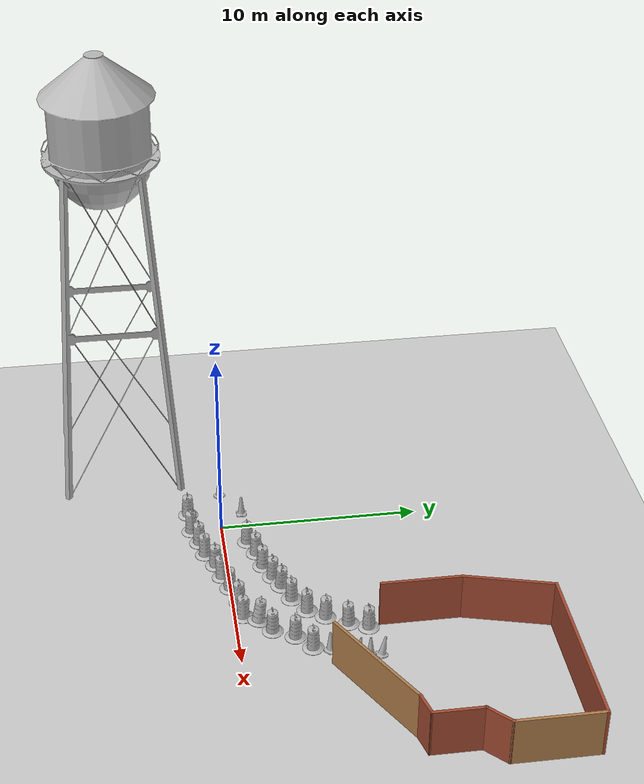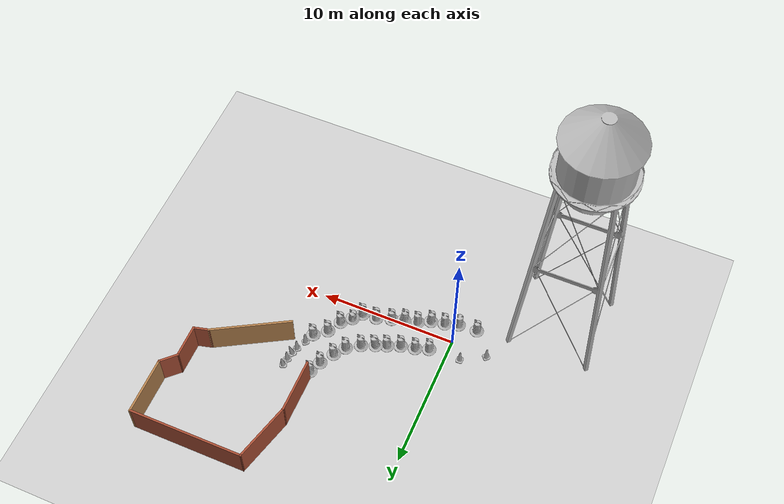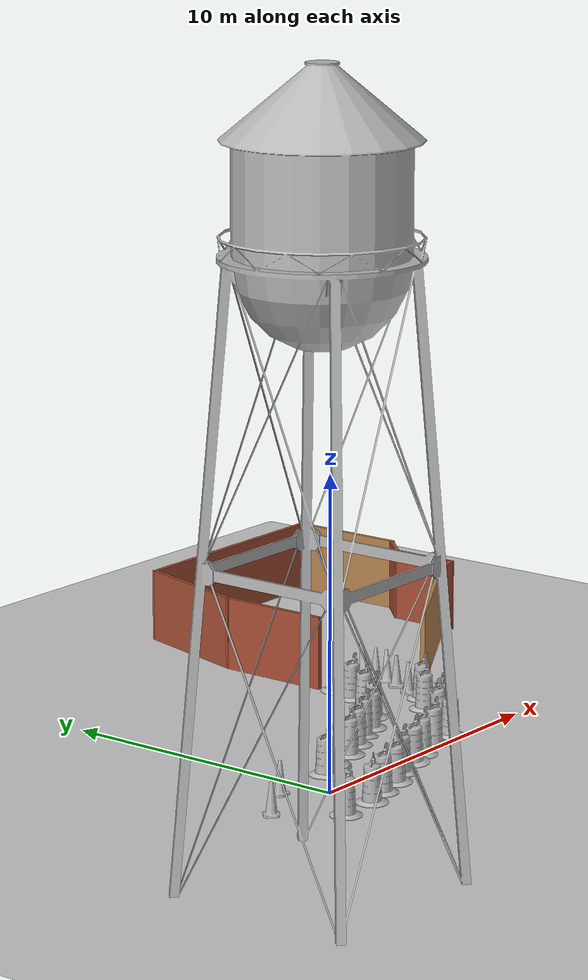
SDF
<sdf version="1.7">
 <world name="default">
  <light name="sun" type="directional">
   <pose>0 0 10 0 -0 0</pose>
   <diffuse>0.8 0.8 0.8 1</diffuse>
   <specular>0.2 0.2 0.2 1</specular>
   <attenuation>
    <range>1000</range>
    <constant>0.9</constant>
    <linear>0.01</linear>
    <quadratic>0.001</quadratic>
   </attenuation>
   <direction>-0.5 0.1 -0.9</direction>
   <spot><inner_angle>0</inner_angle><outer_angle>0</outer_angle><falloff>0</falloff></spot>
  </light>
  <model name="ground_plane">
   <static>1</static>
   <link name="link">
    <collision name="collision">
     <geometry><plane><normal>0 0 1</normal><size>100 100</size></plane></geometry>
     <surface>
      <contact><collide_bitmask>65535</collide_bitmask></contact>
      <friction><ode><mu>100</mu><mu2>50</mu2></ode></friction>
     </surface>
    </collision>
    <visual name="visual">
     <cast_shadows>0</cast_shadows>
     <geometry><plane><normal>0 0 1</normal><size>100 100</size></plane></geometry>
     <material>
      <script><uri>file://media/materials/scripts/gazebo.material</uri><name>Gazebo/Grey</name></script>
     </material>
    </visual>
   </link>
  </model>
  <gravity>0 0 -9.8</gravity>
  <magnetic_field>6e-06 2.3e-05 -4.2e-05</magnetic_field>
  <atmosphere type="adiabatic"/>
  <physics type="ode">
   <max_step_size>0.001</max_step_size>
   <real_time_factor>1</real_time_factor>
   <real_time_update_rate>1000</real_time_update_rate>
  </physics>
  <scene><ambient>0.4 0.4 0.4 1</ambient><background>0.7 0.7 0.7 1</background><shadows>1</shadows></scene>
  <audio><device>default</device></audio>
  <spherical_coordinates>
   <surface_model>EARTH_WGS84</surface_model>
   <latitude_deg>0</latitude_deg>
   <longitude_deg>0</longitude_deg>
   <elevation>0</elevation>
   <heading_deg>0</heading_deg>
  </spherical_coordinates>
  <model name="Construction Cone">
   <link name="link">
    <collision name="collision">
     <geometry>
      <mesh><scale>10 10 10</scale><uri>model://construction_cone/meshes/construction_cone.dae</uri></mesh>
     </geometry>
    </collision>
    <visual name="visual">
     <geometry>
      <mesh><scale>10 10 10</scale><uri>model://construction_cone/meshes/construction_cone.dae</uri></mesh>
     </geometry>
    </visual>
    <inertial>
     <inertia><ixx>1</ixx><ixy>0</ixy><ixz>0</ixz><iyy>1</iyy><iyz>0</iyz><izz>1</izz></inertia>
     <mass>1</mass>
    </inertial>
   </link>
   <pose>-1.00525 1.13466 -1e-05 -1e-06 0 0</pose>
  </model>
  <model name="Construction Cone_0">
   <link name="link">
    <collision name="collision">
     <geometry>
      <mesh><scale>10 10 10</scale><uri>model://construction_cone/meshes/construction_cone.dae</uri></mesh>
     </geometry>
    </collision>
    <visual name="visual">
     <geometry>
      <mesh><scale>10 10 10</scale><uri>model://construction_cone/meshes/construction_cone.dae</uri></mesh>
     </geometry>
    </visual>
    <inertial>
     <inertia><ixx>1</ixx><ixy>0</ixy><ixz>0</ixz><iyy>1</iyy><iyz>0</iyz><izz>1</izz></inertia>
     <mass>1</mass>
    </inertial>
   </link>
   <pose>-2.66842 0.153423 -1e-05 -1e-06 -0 -0.819479</pose>
  </model>
  <model name="Construction Barrel">
   <link name="link">
    <inertial>
     <pose>0 0 0.4 0 -0 0</pose>
     <mass>500</mass>
     <inertia><ixx>51.2096</ixx><iyy>51.2096</iyy><izz>25</izz><ixy>0</ixy><ixz>0</ixz><iyz>0</iyz></inertia>
    </inertial>
    <collision name="collision">
     <geometry><mesh><uri>model://construction_barrel/meshes/construction_barrel.dae</uri></mesh></geometry>
    </collision>
    <visual name="visual">
     <geometry><mesh><uri>model://construction_barrel/meshes/construction_barrel.dae</uri></mesh></geometry>
    </visual>
   </link>
   <pose>0.109753 -1.52429 0.010482 -0.002709 -0.020602 0.441072</pose>
  </model>
  <model name="Construction Barrel_0">
   <link name="link">
    <inertial>
     <pose>0 0 0.4 0 -0 0</pose>
     <mass>500</mass>
     <inertia><ixx>51.2096</ixx><iyy>51.2096</iyy><izz>25</izz><ixy>0</ixy><ixz>0</ixz><iyz>0</iyz></inertia>
    </inertial>
    <collision name="collision">
     <geometry><mesh><uri>model://construction_barrel/meshes/construction_barrel.dae</uri></mesh></geometry>
    </collision>
    <visual name="visual">
     <geometry><mesh><uri>model://construction_barrel/meshes/construction_barrel.dae</uri></mesh></geometry>
    </visual>
   </link>
   <pose>1.31428 1.18994 -1e-06 2e-06 -1e-06 0.001311</pose>
  </model>
  <model name="water_tower">
   <static>1</static>
   <link name="link">
    <collision name="collision">
     <geometry><mesh><uri>model://water_tower/meshes/water_tower.dae</uri></mesh></geometry>
    </collision>
    <visual name="visual">
     <geometry><mesh><uri>model://water_tower/meshes/water_tower.dae</uri></mesh></geometry>
    </visual>
   </link>
   <pose>-6.56833 -4.70062 0 0 -0 0</pose>
  </model>
  <model name="Construction Barrel_0_clone">
   <link name="link">
    <inertial>
     <pose>0 0 0.4 0 -0 0</pose>
     <mass>500</mass>
     <inertia><ixx>51.2096</ixx><iyy>51.2096</iyy><izz>25</izz><ixy>0</ixy><ixz>0</ixz><iyz>0</iyz></inertia>
    </inertial>
    <collision name="collision">
     <geometry><mesh><uri>model://construction_barrel/meshes/construction_barrel.dae</uri></mesh></geometry>
    </collision>
    <visual name="visual">
     <geometry><mesh><uri>model://construction_barrel/meshes/construction_barrel.dae</uri></mesh></geometry>
    </visual>
   </link>
   <pose>2.27088 1.52299 -1e-06 0 5e-06 -0.000313</pose>
  </model>
  <model name="Construction Barrel_0_clone_0">
   <link name="link">
    <inertial>
     <pose>0 0 0.4 0 -0 0</pose>
     <mass>500</mass>
     <inertia><ixx>51.2096</ixx><iyy>51.2096</iyy><izz>25</izz><ixy>0</ixy><ixz>0</ixz><iyz>0</iyz></inertia>
    </inertial>
    <collision name="collision">
     <geometry><mesh><uri>model://construction_barrel/meshes/construction_barrel.dae</uri></mesh></geometry>
    </collision>
    <visual name="visual">
     <geometry><mesh><uri>model://construction_barrel/meshes/construction_barrel.dae</uri></mesh></geometry>
    </visual>
   </link>
   <pose>3.29713 1.74462 -0.000755 -0.000464 0.000817 -0.04493</pose>
  </model>
  <model name="Construction Barrel_0_clone_1">
   <link name="link">
    <inertial>
     <pose>0 0 0.4 0 -0 0</pose>
     <mass>500</mass>
     <inertia><ixx>51.2096</ixx><iyy>51.2096</iyy><izz>25</izz><ixy>0</ixy><ixz>0</ixz><iyz>0</iyz></inertia>
    </inertial>
    <collision name="collision">
     <geometry><mesh><uri>model://construction_barrel/meshes/construction_barrel.dae</uri></mesh></geometry>
    </collision>
    <visual name="visual">
     <geometry><mesh><uri>model://construction_barrel/meshes/construction_barrel.dae</uri></mesh></geometry>
    </visual>
   </link>
   <pose>4.20124 2.12443 0.014591 -0.01105 0.026667 0.0024</pose>
  </model>
  <model name="Construction Barrel_0_clone_2">
   <link name="link">
    <inertial>
     <pose>0 0 0.4 0 -0 0</pose>
     <mass>500</mass>
     <inertia><ixx>51.2096</ixx><iyy>51.2096</iyy><izz>25</izz><ixy>0</ixy><ixz>0</ixz><iyz>0</iyz></inertia>
    </inertial>
    <collision name="collision">
     <geometry><mesh><uri>model://construction_barrel/meshes/construction_barrel.dae</uri></mesh></geometry>
    </collision>
    <visual name="visual">
     <geometry><mesh><uri>model://construction_barrel/meshes/construction_barrel.dae</uri></mesh></geometry>
    </visual>
   </link>
   <pose>4.93662 2.44057 0.054716 -0.04167 0.100136 -0.020503</pose>
  </model>
  <model name="Construction Barrel_0_clone_3">
   <link name="link">
    <inertial>
     <pose>0 0 0.4 0 -0 0</pose>
     <mass>500</mass>
     <inertia><ixx>51.2096</ixx><iyy>51.2096</iyy><izz>25</izz><ixy>0</ixy><ixz>0</ixz><iyz>0</iyz></inertia>
    </inertial>
    <collision name="collision">
     <geometry><mesh><uri>model://construction_barrel/meshes/construction_barrel.dae</uri></mesh></geometry>
    </collision>
    <visual name="visual">
     <geometry><mesh><uri>model://construction_barrel/meshes/construction_barrel.dae</uri></mesh></geometry>
    </visual>
   </link>
   <pose>5.9276 2.83392 -2e-06 -7e-06 -4e-06 -4.3e-05</pose>
  </model>
  <model name="Construction Barrel_0_clone_4">
   <link name="link">
    <inertial>
     <pose>0 0 0.4 0 -0 0</pose>
     <mass>500</mass>
     <inertia><ixx>51.2096</ixx><iyy>51.2096</iyy><izz>25</izz><ixy>0</ixy><ixz>0</ixz><iyz>0</iyz></inertia>
    </inertial>
    <collision name="collision">
     <geometry><mesh><uri>model://construction_barrel/meshes/construction_barrel.dae</uri></mesh></geometry>
    </collision>
    <visual name="visual">
     <geometry><mesh><uri>model://construction_barrel/meshes/construction_barrel.dae</uri></mesh></geometry>
    </visual>
   </link>
   <pose>6.8623 3.45763 -2e-06 0 7e-06 0.008518</pose>
  </model>
  <model name="Construction Barrel_0_clone_5">
   <link name="link">
    <inertial>
     <pose>0 0 0.4 0 -0 0</pose>
     <mass>500</mass>
     <inertia><ixx>51.2096</ixx><iyy>51.2096</iyy><izz>25</izz><ixy>0</ixy><ixz>0</ixz><iyz>0</iyz></inertia>
    </inertial>
    <collision name="collision">
     <geometry><mesh><uri>model://construction_barrel/meshes/construction_barrel.dae</uri></mesh></geometry>
    </collision>
    <visual name="visual">
     <geometry><mesh><uri>model://construction_barrel/meshes/construction_barrel.dae</uri></mesh></geometry>
    </visual>
   </link>
   <pose>1.07049 -1.2077 -0.000177 0.000124 -0.000445 0.009567</pose>
  </model>
  <model name="Construction Barrel_0_clone_6">
   <link name="link">
    <inertial>
     <pose>0 0 0.4 0 -0 0</pose>
     <mass>500</mass>
     <inertia><ixx>51.2096</ixx><iyy>51.2096</iyy><izz>25</izz><ixy>0</ixy><ixz>0</ixz><iyz>0</iyz></inertia>
    </inertial>
    <collision name="collision">
     <geometry><mesh><uri>model://construction_barrel/meshes/construction_barrel.dae</uri></mesh></geometry>
    </collision>
    <visual name="visual">
     <geometry><mesh><uri>model://construction_barrel/meshes/construction_barrel.dae</uri></mesh></geometry>
    </visual>
   </link>
   <pose>2.06166 -0.993833 0.019542 0.014815 -0.035711 0.009278</pose>
  </model>
  <model name="Construction Barrel_0_clone_7">
   <link name="link">
    <inertial>
     <pose>0 0 0.4 0 -0 0</pose>
     <mass>500</mass>
     <inertia><ixx>51.2096</ixx><iyy>51.2096</iyy><izz>25</izz><ixy>0</ixy><ixz>0</ixz><iyz>0</iyz></inertia>
    </inertial>
    <collision name="collision">
     <geometry><mesh><uri>model://construction_barrel/meshes/construction_barrel.dae</uri></mesh></geometry>
    </collision>
    <visual name="visual">
     <geometry><mesh><uri>model://construction_barrel/meshes/construction_barrel.dae</uri></mesh></geometry>
    </visual>
   </link>
   <pose>2.92339 -0.557985 0 0 -0 0.000497</pose>
  </model>
  <model name="Construction Barrel_0_clone_8">
   <link name="link">
    <inertial>
     <pose>0 0 0.4 0 -0 0</pose>
     <mass>500</mass>
     <inertia><ixx>51.2096</ixx><iyy>51.2096</iyy><izz>25</izz><ixy>0</ixy><ixz>0</ixz><iyz>0</iyz></inertia>
    </inertial>
    <collision name="collision">
     <geometry><mesh><uri>model://construction_barrel/meshes/construction_barrel.dae</uri></mesh></geometry>
    </collision>
    <visual name="visual">
     <geometry><mesh><uri>model://construction_barrel/meshes/construction_barrel.dae</uri></mesh></geometry>
    </visual>
   </link>
   <pose>3.91172 -0.324985 0.042986 0.032039 -0.078796 0.03183</pose>
  </model>
  <model name="Construction Barrel_0_clone_9">
   <link name="link">
    <inertial>
     <pose>0 0 0.4 0 -0 0</pose>
     <mass>500</mass>
     <inertia><ixx>51.2096</ixx><iyy>51.2096</iyy><izz>25</izz><ixy>0</ixy><ixz>0</ixz><iyz>0</iyz></inertia>
    </inertial>
    <collision name="collision">
     <geometry><mesh><uri>model://construction_barrel/meshes/construction_barrel.dae</uri></mesh></geometry>
    </collision>
    <visual name="visual">
     <geometry><mesh><uri>model://construction_barrel/meshes/construction_barrel.dae</uri></mesh></geometry>
    </visual>
   </link>
   <pose>4.74424 -0.028022 -2e-06 9e-06 3e-06 -0.002425</pose>
  </model>
  <model name="Construction Barrel_0_clone_10">
   <link name="link">
    <inertial>
     <pose>0 0 0.4 0 -0 0</pose>
     <mass>500</mass>
     <inertia><ixx>51.2096</ixx><iyy>51.2096</iyy><izz>25</izz><ixy>0</ixy><ixz>0</ixz><iyz>0</iyz></inertia>
    </inertial>
    <collision name="collision">
     <geometry><mesh><uri>model://construction_barrel/meshes/construction_barrel.dae</uri></mesh></geometry>
    </collision>
    <visual name="visual">
     <geometry><mesh><uri>model://construction_barrel/meshes/construction_barrel.dae</uri></mesh></geometry>
    </visual>
   </link>
   <pose>5.82019 0.314578 -3e-06 0 -1.2e-05 0.001316</pose>
  </model>
  <model name="Construction Barrel_0_clone_11">
   <link name="link">
    <inertial>
     <pose>0 0 0.4 0 -0 0</pose>
     <mass>500</mass>
     <inertia><ixx>51.2096</ixx><iyy>51.2096</iyy><izz>25</izz><ixy>0</ixy><ixz>0</ixz><iyz>0</iyz></inertia>
    </inertial>
    <collision name="collision">
     <geometry><mesh><uri>model://construction_barrel/meshes/construction_barrel.dae</uri></mesh></geometry>
    </collision>
    <visual name="visual">
     <geometry><mesh><uri>model://construction_barrel/meshes/construction_barrel.dae</uri></mesh></geometry>
    </visual>
   </link>
   <pose>6.86562 0.391229 -6.2e-05 -7.1e-05 4.2e-05 -0.01641</pose>
  </model>
  <model name="Construction Barrel_0_clone_12">
   <link name="link">
    <inertial>
     <pose>0 0 0.4 0 -0 0</pose>
     <mass>500</mass>
     <inertia><ixx>51.2096</ixx><iyy>51.2096</iyy><izz>25</izz><ixy>0</ixy><ixz>0</ixz><iyz>0</iyz></inertia>
    </inertial>
    <collision name="collision">
     <geometry><mesh><uri>model://construction_barrel/meshes/construction_barrel.dae</uri></mesh></geometry>
    </collision>
    <visual name="visual">
     <geometry><mesh><uri>model://construction_barrel/meshes/construction_barrel.dae</uri></mesh></geometry>
    </visual>
   </link>
   <pose>7.38874 1.04739 0.088996 -0.127699 -0.120683 -0.151631</pose>
  </model>
  <model name="Construction Barrel_0_clone_13">
   <link name="link">
    <inertial>
     <pose>0 0 0.4 0 -0 0</pose>
     <mass>500</mass>
     <inertia><ixx>51.2096</ixx><iyy>51.2096</iyy><izz>25</izz><ixy>0</ixy><ixz>0</ixz><iyz>0</iyz></inertia>
    </inertial>
    <collision name="collision">
     <geometry><mesh><uri>model://construction_barrel/meshes/construction_barrel.dae</uri></mesh></geometry>
    </collision>
    <visual name="visual">
     <geometry><mesh><uri>model://construction_barrel/meshes/construction_barrel.dae</uri></mesh></geometry>
    </visual>
   </link>
   <pose>8.06638 1.65842 -1e-06 -1e-06 3e-06 -0.04778</pose>
  </model>
  <model name="Construction Barrel_0_clone_14">
   <link name="link">
    <inertial>
     <pose>0 0 0.4 0 -0 0</pose>
     <mass>500</mass>
     <inertia><ixx>51.2096</ixx><iyy>51.2096</iyy><izz>25</izz><ixy>0</ixy><ixz>0</ixz><iyz>0</iyz></inertia>
    </inertial>
    <collision name="collision">
     <geometry><mesh><uri>model://construction_barrel/meshes/construction_barrel.dae</uri></mesh></geometry>
    </collision>
    <visual name="visual">
     <geometry><mesh><uri>model://construction_barrel/meshes/construction_barrel.dae</uri></mesh></geometry>
    </visual>
   </link>
   <pose>8.6116 2.67174 0 0 -0 0.001317</pose>
  </model>
  <model name="Construction Barrel_0_clone_15">
   <link name="link">
    <inertial>
     <pose>0 0 0.4 0 -0 0</pose>
     <mass>500</mass>
     <inertia><ixx>51.2096</ixx><iyy>51.2096</iyy><izz>25</izz><ixy>0</ixy><ixz>0</ixz><iyz>0</iyz></inertia>
    </inertial>
    <collision name="collision">
     <geometry><mesh><uri>model://construction_barrel/meshes/construction_barrel.dae</uri></mesh></geometry>
    </collision>
    <visual name="visual">
     <geometry><mesh><uri>model://construction_barrel/meshes/construction_barrel.dae</uri></mesh></geometry>
    </visual>
   </link>
   <pose>9.46058 3.38383 -0 0 -0 0.001378</pose>
  </model>
  <model name="Construction Barrel_0_clone_16">
   <link name="link">
    <inertial>
     <pose>0 0 0.4 0 -0 0</pose>
     <mass>500</mass>
     <inertia><ixx>51.2096</ixx><iyy>51.2096</iyy><izz>25</izz><ixy>0</ixy><ixz>0</ixz><iyz>0</iyz></inertia>
    </inertial>
    <collision name="collision">
     <geometry><mesh><uri>model://construction_barrel/meshes/construction_barrel.dae</uri></mesh></geometry>
    </collision>
    <visual name="visual">
     <geometry><mesh><uri>model://construction_barrel/meshes/construction_barrel.dae</uri></mesh></geometry>
    </visual>
   </link>
   <pose>7.43675 4.25832 0.014507 -0.0229 0.017243 -0.040666</pose>
  </model>
  <model name="Construction Barrel_0_clone_17">
   <link name="link">
    <inertial>
     <pose>0 0 0.4 0 -0 0</pose>
     <mass>500</mass>
     <inertia><ixx>51.2096</ixx><iyy>51.2096</iyy><izz>25</izz><ixy>0</ixy><ixz>0</ixz><iyz>0</iyz></inertia>
    </inertial>
    <collision name="collision">
     <geometry><mesh><uri>model://construction_barrel/meshes/construction_barrel.dae</uri></mesh></geometry>
    </collision>
    <visual name="visual">
     <geometry><mesh><uri>model://construction_barrel/meshes/construction_barrel.dae</uri></mesh></geometry>
    </visual>
   </link>
   <pose>8.04339 5.2778 0.018516 0.033858 -0.013984 -0.059676</pose>
  </model>
  <model name="Construction Barrel_0_clone_18">
   <link name="link">
    <inertial>
     <pose>0 0 0.4 0 -0 0</pose>
     <mass>500</mass>
     <inertia><ixx>51.2096</ixx><iyy>51.2096</iyy><izz>25</izz><ixy>0</ixy><ixz>0</ixz><iyz>0</iyz></inertia>
    </inertial>
    <collision name="collision">
     <geometry><mesh><uri>model://construction_barrel/meshes/construction_barrel.dae</uri></mesh></geometry>
    </collision>
    <visual name="visual">
     <geometry><mesh><uri>model://construction_barrel/meshes/construction_barrel.dae</uri></mesh></geometry>
    </visual>
   </link>
   <pose>8.40555 6.17765 -1.4e-05 1.7e-05 -8e-06 0.010215</pose>
  </model>
  <model name="Construction Barrel_0_clone_19">
   <link name="link">
    <inertial>
     <pose>0 0 0.4 0 -0 0</pose>
     <mass>500</mass>
     <inertia><ixx>51.2096</ixx><iyy>51.2096</iyy><izz>25</izz><ixy>0</ixy><ixz>0</ixz><iyz>0</iyz></inertia>
    </inertial>
    <collision name="collision">
     <geometry><mesh><uri>model://construction_barrel/meshes/construction_barrel.dae</uri></mesh></geometry>
    </collision>
    <visual name="visual">
     <geometry><mesh><uri>model://construction_barrel/meshes/construction_barrel.dae</uri></mesh></geometry>
    </visual>
   </link>
   <pose>-1.27783 -1.58712 -1e-06 4e-06 -1e-06 0.001315</pose>
  </model>
  <model name="Construction Cone_0_clone">
   <link name="link">
    <collision name="collision">
     <geometry>
      <mesh><scale>10 10 10</scale><uri>model://construction_cone/meshes/construction_cone.dae</uri></mesh>
     </geometry>
    </collision>
    <visual name="visual">
     <geometry>
      <mesh><scale>10 10 10</scale><uri>model://construction_cone/meshes/construction_cone.dae</uri></mesh>
     </geometry>
    </visual>
    <inertial>
     <inertia><ixx>1</ixx><ixy>0</ixy><ixz>0</ixz><iyy>1</iyy><iyz>0</iyz><izz>1</izz></inertia>
     <mass>1</mass>
    </inertial>
   </link>
   <pose>9.73041 4.14519 -0 0 0 -0.818431</pose>
  </model>
  <model name="Construction Cone_0_clone_0">
   <link name="link">
    <collision name="collision">
     <geometry>
      <mesh><scale>10 10 10</scale><uri>model://construction_cone/meshes/construction_cone.dae</uri></mesh>
     </geometry>
    </collision>
    <visual name="visual">
     <geometry>
      <mesh><scale>10 10 10</scale><uri>model://construction_cone/meshes/construction_cone.dae</uri></mesh>
     </geometry>
    </visual>
    <inertial>
     <inertia><ixx>1</ixx><ixy>0</ixy><ixz>0</ixz><iyy>1</iyy><iyz>0</iyz><izz>1</izz></inertia>
     <mass>1</mass>
    </inertial>
   </link>
   <pose>10.0514 4.87052 -0.000402 5e-06 -3.4e-05 -0.819645</pose>
  </model>
  <model name="Construction Cone_0_clone_1">
   <link name="link">
    <collision name="collision">
     <geometry>
      <mesh><scale>10 10 10</scale><uri>model://construction_cone/meshes/construction_cone.dae</uri></mesh>
     </geometry>
    </collision>
    <visual name="visual">
     <geometry>
      <mesh><scale>10 10 10</scale><uri>model://construction_cone/meshes/construction_cone.dae</uri></mesh>
     </geometry>
    </visual>
    <inertial>
     <inertia><ixx>1</ixx><ixy>0</ixy><ixz>0</ixz><iyy>1</iyy><iyz>0</iyz><izz>1</izz></inertia>
     <mass>1</mass>
    </inertial>
   </link>
   <pose>10.1697 5.35012 0.04443 -0.177698 -0 -0.811604</pose>
  </model>
  <model name="Construction Cone_0_clone_2">
   <link name="link">
    <collision name="collision">
     <geometry>
      <mesh><scale>10 10 10</scale><uri>model://construction_cone/meshes/construction_cone.dae</uri></mesh>
     </geometry>
    </collision>
    <visual name="visual">
     <geometry>
      <mesh><scale>10 10 10</scale><uri>model://construction_cone/meshes/construction_cone.dae</uri></mesh>
     </geometry>
    </visual>
    <inertial>
     <inertia><ixx>1</ixx><ixy>0</ixy><ixz>0</ixz><iyy>1</iyy><iyz>0</iyz><izz>1</izz></inertia>
     <mass>1</mass>
    </inertial>
   </link>
   <pose>10.3213 5.93335 -0 0 0 -0.816586</pose>
  </model>
  <model name="Construction Cone_0_clone_4">
   <link name="link">
    <collision name="collision">
     <geometry>
      <mesh><scale>10 10 10</scale><uri>model://construction_cone/meshes/construction_cone.dae</uri></mesh>
     </geometry>
    </collision>
    <visual name="visual">
     <geometry>
      <mesh><scale>10 10 10</scale><uri>model://construction_cone/meshes/construction_cone.dae</uri></mesh>
     </geometry>
    </visual>
    <inertial>
     <inertia><ixx>1</ixx><ixy>0</ixy><ixz>0</ixz><iyy>1</iyy><iyz>0</iyz><izz>1</izz></inertia>
     <mass>1</mass>
    </inertial>
   </link>
   <pose>10.3937 6.44616 0.043248 -0.050731 -0.138463 -1.19423</pose>
  </model>
  <model name="my_building01">
   <pose>12.9705 9.50461 0 0 -0 0</pose>
   <link name="Wall_0">
    <collision name="Wall_0_Collision">
     <geometry><box><size>6 0.15 2.5</size></box></geometry>
     <pose>0 0 1.25 0 -0 0</pose>
    </collision>
    <visual name="Wall_0_Visual">
     <pose>0 0 1.25 0 -0 0</pose>
     <geometry><box><size>6 0.15 2.5</size></box></geometry>
     <material>
      <script><uri>file://media/materials/scripts/gazebo.material</uri><name>Gazebo/Wood</name></script>
      <ambient>1 1 1 1</ambient>
     </material>
     <meta><layer>0</layer></meta>
    </visual>
    <pose>0.180589 -3.83935 0 0 -0 0.523599</pose>
   </link>
   <link name="Wall_1">
    <collision name="Wall_1_Collision">
     <geometry><box><size>1.25 0.15 2.5</size></box></geometry>
     <pose>0 0 1.25 0 -0 0</pose>
    </collision>
    <visual name="Wall_1_Visual">
     <pose>0 0 1.25 0 -0 0</pose>
     <geometry><box><size>1.25 0.15 2.5</size></box></geometry>
     <material>
      <script><uri>file://media/materials/scripts/gazebo.material</uri><name>Gazebo/Bricks</name></script>
      <ambient>1 1 1 1</ambient>
     </material>
     <meta><layer>0</layer></meta>
    </visual>
    <pose>3.24497 -2.2345 0 0 -0 0.261799</pose>
   </link>
   <link name="Wall_10">
    <collision name="Wall_10_Collision">
     <geometry><box><size>4.25 0.15 2.5</size></box></geometry>
     <pose>0 0 1.25 0 -0 0</pose>
    </collision>
    <visual name="Wall_10_Visual">
     <pose>0 0 1.25 0 -0 0</pose>
     <geometry><box><size>4.25 0.15 2.5</size></box></geometry>
     <material>
      <script><uri>file://media/materials/scripts/gazebo.material</uri><name>Gazebo/Wood</name></script>
      <ambient>1 1 1 1</ambient>
     </material>
     <meta><layer>0</layer></meta>
    </visual>
    <pose>4.73083 3.26245 0 0 -0 1.5708</pose>
   </link>
   <link name="Wall_11">
    <collision name="Wall_11_Collision">
     <geometry><box><size>8.5 0.15 2.5</size></box></geometry>
     <pose>0 0 1.25 0 -0 0</pose>
    </collision>
    <visual name="Wall_11_Visual">
     <pose>0 0 1.25 0 -0 0</pose>
     <geometry><box><size>8.5 0.15 2.5</size></box></geometry>
     <material>
      <script><uri>file://media/materials/scripts/gazebo.material</uri><name>Gazebo/Bricks</name></script>
      <ambient>1 1 1 1</ambient>
     </material>
     <meta><layer>0</layer></meta>
    </visual>
    <pose>0.555826 5.31245 0 0 -0 3.14159</pose>
   </link>
   <link name="Wall_12">
    <collision name="Wall_12_Collision">
     <geometry><box><size>4.5 0.15 2.5</size></box></geometry>
     <pose>0 0 1.25 0 -0 0</pose>
    </collision>
    <visual name="Wall_12_Visual">
     <pose>0 0 1.25 0 -0 0</pose>
     <geometry><box><size>4.5 0.15 2.5</size></box></geometry>
     <material>
      <script><uri>file://media/materials/scripts/gazebo.material</uri><name>Gazebo/Bricks</name></script>
      <ambient>1 1 1 1</ambient>
     </material>
     <meta><layer>0</layer></meta>
    </visual>
    <pose>-4.1821 3.21156 0 0 -0 -1.8326</pose>
   </link>
   <link name="Wall_13">
    <collision name="Wall_13_Collision">
     <geometry><box><size>4 0.15 2.5</size></box></geometry>
     <pose>0 0 1.25 0 -0 0</pose>
    </collision>
    <visual name="Wall_13_Visual">
     <pose>0 0 1.25 0 -0 0</pose>
     <geometry><box><size>4 0.15 2.5</size></box></geometry>
     <material>
      <script><uri>file://media/materials/scripts/gazebo.material</uri><name>Gazebo/Bricks</name></script>
      <ambient>1 1 1 1</ambient>
     </material>
     <meta><layer>0</layer></meta>
    </visual>
    <pose>-4.74504 -0.814331 0 0 -0 -1.5708</pose>
   </link>
   <link name="Wall_2">
    <collision name="Wall_2_Collision">
     <geometry><box><size>2.5 0.15 2.5</size></box></geometry>
     <pose>0 0 1.25 0 -0 0</pose>
    </collision>
    <visual name="Wall_2_Visual">
     <pose>0 0 1.25 0 -0 0</pose>
     <geometry><box><size>2.5 0.15 2.5</size></box></geometry>
     <material>
      <script><uri>file://media/materials/scripts/gazebo.material</uri><name>Gazebo/Bricks</name></script>
      <ambient>1 1 1 1</ambient>
     </material>
     <meta><layer>0</layer></meta>
    </visual>
    <pose>3.77623 -0.917148 0 0 -0 1.5708</pose>
   </link>
   <link name="Wall_6">
    <collision name="Wall_6_Collision">
     <geometry><box><size>1.5 0.15 2.5</size></box></geometry>
     <pose>0 0 1.25 0 -0 0</pose>
    </collision>
    <visual name="Wall_6_Visual">
     <pose>0 0 1.25 0 -0 0</pose>
     <geometry><box><size>1.5 0.15 2.5</size></box></geometry>
     <material>
      <script><uri>file://media/materials/scripts/gazebo.material</uri><name>Gazebo/Bricks</name></script>
      <ambient>1 1 1 1</ambient>
     </material>
     <meta><layer>0</layer></meta>
    </visual>
    <pose>4.25353 0.735149 0 0 -0 0.785398</pose>
   </link>
   <static>1</static>
  </model>
 </world>
</sdf>
